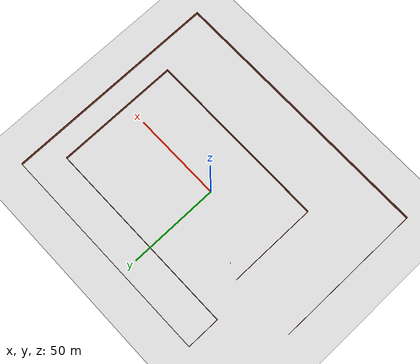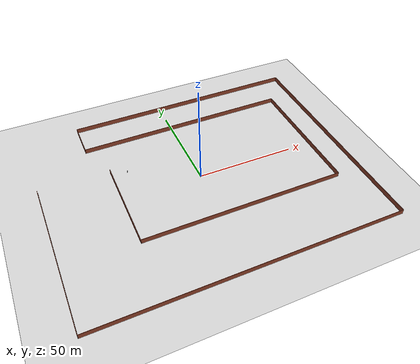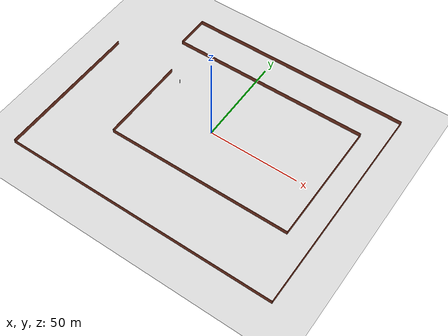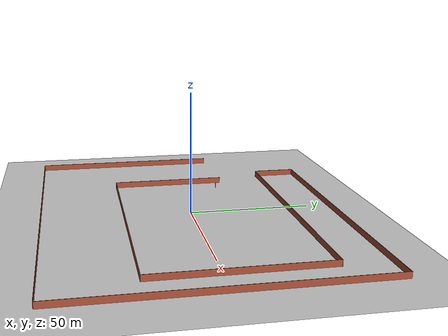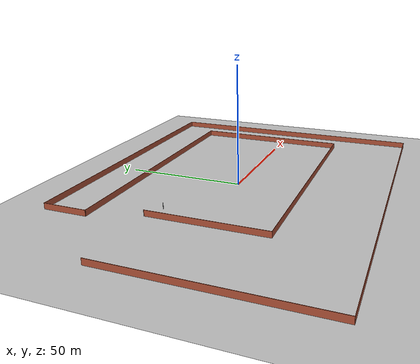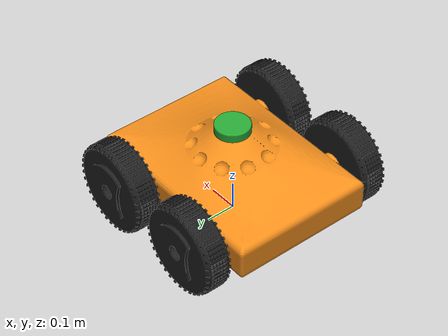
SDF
<sdf version="1.7">
 <world name="default">
  <light name="sun" type="directional">
   <pose>0 0 10 0 -0 0</pose>
   <diffuse>0.8 0.8 0.8 1</diffuse>
   <specular>0.2 0.2 0.2 1</specular>
   <attenuation>
    <range>1000</range>
    <constant>0.9</constant>
    <linear>0.01</linear>
    <quadratic>0.001</quadratic>
   </attenuation>
   <direction>-0.5 0.1 -0.9</direction>
   <spot><inner_angle>0</inner_angle><outer_angle>0</outer_angle><falloff>0</falloff></spot>
  </light>
  <model name="ground_plane">
   <static>1</static>
   <link name="link">
    <collision name="collision">
     <geometry><plane><normal>0 0 1</normal><size>100 100</size></plane></geometry>
     <surface>
      <contact><collide_bitmask>65535</collide_bitmask></contact>
      <friction><ode><mu>100</mu><mu2>50</mu2></ode></friction>
     </surface>
    </collision>
    <visual name="visual">
     <cast_shadows>0</cast_shadows>
     <geometry><plane><normal>0 0 1</normal><size>100 100</size></plane></geometry>
     <material>
      <script><uri>file://media/materials/scripts/gazebo.material</uri><name>Gazebo/Grey</name></script>
     </material>
    </visual>
   </link>
  </model>
  <gravity>0 0 -9.8</gravity>
  <magnetic_field>6e-06 2.3e-05 -4.2e-05</magnetic_field>
  <atmosphere type="adiabatic"/>
  <physics type="ode">
   <max_step_size>0.001</max_step_size>
   <real_time_factor>1</real_time_factor>
   <real_time_update_rate>1000</real_time_update_rate>
  </physics>
  <scene><ambient>0.4 0.4 0.4 1</ambient><background>0.7 0.7 0.7 1</background><shadows>1</shadows></scene>
  <spherical_coordinates>
   <surface_model>EARTH_WGS84</surface_model>
   <latitude_deg>0</latitude_deg>
   <longitude_deg>0</longitude_deg>
   <elevation>0</elevation>
   <heading_deg>0</heading_deg>
  </spherical_coordinates>
  <model name="gbot">
   <link name="base_link">
    <inertial>
     <pose>-1e-06 -0 0.173323 0 -0 0</pose>
     <mass>72.798</mass>
     <inertia>
      <ixx>1.67159</ixx>
      <ixy>-2e-06</ixy>
      <ixz>9.0619e-07</ixz>
      <iyy>2.76467</iyy>
      <iyz>-2.16303e-08</iyz>
      <izz>4.05381</izz>
     </inertia>
    </inertial>
    <collision name="base_link_collision">
     <geometry>
      <mesh>
       <scale>0.001 0.001 0.001</scale>
       <uri>/home/pavan/w_s/src/gbot_description/meshes/base_link.stl</uri>
      </mesh>
     </geometry>
     <surface><friction><ode><mu>0.2</mu><mu2>0.2</mu2></ode></friction></surface>
    </collision>
    <collision name="base_link_fixed_joint_lump__lidar_1_collision_1">
     <geometry>
      <mesh>
       <scale>0.001 0.001 0.001</scale>
       <uri>/home/pavan/w_s/src/gbot_description/meshes/lidar_1.stl</uri>
      </mesh>
     </geometry>
     <surface><friction><ode><mu>0.2</mu><mu2>0.2</mu2></ode></friction></surface>
    </collision>
    <visual name="base_link_visual">
     <geometry>
      <mesh>
       <scale>0.001 0.001 0.001</scale>
       <uri>/home/pavan/w_s/src/gbot_description/meshes/base_link.stl</uri>
      </mesh>
     </geometry>
     <material>
      <script><name>Gazebo/Orange</name><uri>file://media/materials/scripts/gazebo.material</uri></script>
     </material>
    </visual>
    <visual name="base_link_fixed_joint_lump__lidar_1_visual_1">
     <geometry>
      <mesh>
       <scale>0.001 0.001 0.001</scale>
       <uri>/home/pavan/w_s/src/gbot_description/meshes/lidar_1.stl</uri>
      </mesh>
     </geometry>
     <material>
      <script><name>Gazebo/Green</name><uri>file://media/materials/scripts/gazebo.material</uri></script>
     </material>
    </visual>
    <self_collide>1</self_collide>
    <sensor name="head_hokuyo_sensor" type="gpu_ray">
     <visualize>0</visualize>
     <update_rate>40</update_rate>
     <ray>
      <scan>
       <horizontal>
        <samples>720</samples>
        <resolution>1</resolution>
        <min_angle>-3.14</min_angle>
        <max_angle>3.14</max_angle>
       </horizontal>
       <vertical><samples>1</samples><min_angle>0</min_angle><max_angle>0</max_angle></vertical>
      </scan>
      <range><min>0.1</min><max>50</max><resolution>0.01</resolution></range>
      <noise><type>gaussian</type><mean>0</mean><stddev>0.01</stddev></noise>
     </ray>
     <plugin name="gazebo_ros_head_hokuyo_controller" filename="libgazebo_ros_gpu_laser.so">
      <topicName>/rrbot/laser/scan</topicName>
      <frameName>lidar_1</frameName>
      <robotNamespace>/</robotNamespace>
     </plugin>
     <pose>0 0 0.32758 0 -0 0</pose>
    </sensor>
   </link>
   <joint name="frw_j" type="revolute">
    <pose relative_to="base_link">0.175 -0.33 0.15508 0 -0 0</pose>
    <parent>base_link</parent>
    <child>frw_1</child>
    <axis>
     <xyz>0 1 0</xyz>
     <limit><lower>-1e+16</lower><upper>1e+16</upper></limit>
     <dynamics><spring_reference>0</spring_reference><spring_stiffness>0</spring_stiffness></dynamics>
    </axis>
   </joint>
   <link name="frw_1">
    <pose relative_to="frw_j">0 0 0 0 -0 0</pose>
    <inertial>
     <pose>1.1e-05 0.012957 -0 0 -0 0</pose>
     <mass>7.5887</mass>
     <inertia>
      <ixx>0.050298</ixx>
      <ixy>0</ixy>
      <ixz>0</ixz>
      <iyy>0.089426</iyy>
      <iyz>-2e-06</iyz>
      <izz>0.049879</izz>
     </inertia>
    </inertial>
    <collision name="frw_1_collision">
     <pose>-0.175 0.33 -0.15508 0 -0 0</pose>
     <geometry>
      <mesh><scale>0.001 0.001 0.001</scale><uri>/home/pavan/w_s/src/gbot_description/meshes/frw_1.stl</uri></mesh>
     </geometry>
     <surface><friction><ode><mu>0.2</mu><mu2>0.2</mu2></ode></friction></surface>
    </collision>
    <visual name="frw_1_visual">
     <pose>-0.175 0.33 -0.15508 0 -0 0</pose>
     <geometry>
      <mesh><scale>0.001 0.001 0.001</scale><uri>/home/pavan/w_s/src/gbot_description/meshes/frw_1.stl</uri></mesh>
     </geometry>
     <material>
      <script><name>Gazebo/Black</name><uri>file://media/materials/scripts/gazebo.material</uri></script>
     </material>
    </visual>
    <self_collide>1</self_collide>
   </link>
   <joint name="blw_j" type="revolute">
    <pose relative_to="base_link">-0.175 0.33 0.15508 0 -0 0</pose>
    <parent>base_link</parent>
    <child>blw_1</child>
    <axis>
     <xyz>0 1 0</xyz>
     <limit><lower>-1e+16</lower><upper>1e+16</upper></limit>
     <dynamics><spring_reference>0</spring_reference><spring_stiffness>0</spring_stiffness></dynamics>
    </axis>
   </joint>
   <link name="blw_1">
    <pose relative_to="blw_j">0 0 0 0 -0 0</pose>
    <inertial>
     <pose>1.1e-05 -0.012957 0 0 -0 0</pose>
     <mass>7.5887</mass>
     <inertia>
      <ixx>0.050298</ixx>
      <ixy>0</ixy>
      <ixz>-1e-06</ixz>
      <iyy>0.089426</iyy>
      <iyz>-2e-06</iyz>
      <izz>0.049879</izz>
     </inertia>
    </inertial>
    <collision name="blw_1_collision">
     <pose>0.175 -0.33 -0.15508 0 -0 0</pose>
     <geometry>
      <mesh><scale>0.001 0.001 0.001</scale><uri>/home/pavan/w_s/src/gbot_description/meshes/blw_1.stl</uri></mesh>
     </geometry>
     <surface><friction><ode><mu>0.2</mu><mu2>0.2</mu2></ode></friction></surface>
    </collision>
    <visual name="blw_1_visual">
     <pose>0.175 -0.33 -0.15508 0 -0 0</pose>
     <geometry>
      <mesh><scale>0.001 0.001 0.001</scale><uri>/home/pavan/w_s/src/gbot_description/meshes/blw_1.stl</uri></mesh>
     </geometry>
     <material>
      <script><name>Gazebo/Black</name><uri>file://media/materials/scripts/gazebo.material</uri></script>
     </material>
    </visual>
    <self_collide>1</self_collide>
   </link>
   <joint name="brw_j" type="revolute">
    <pose relative_to="base_link">-0.175 -0.33 0.15508 0 -0 0</pose>
    <parent>base_link</parent>
    <child>brw_1</child>
    <axis>
     <xyz>0 1 0</xyz>
     <limit><lower>-1e+16</lower><upper>1e+16</upper></limit>
     <dynamics><spring_reference>0</spring_reference><spring_stiffness>0</spring_stiffness></dynamics>
    </axis>
   </joint>
   <link name="brw_1">
    <pose relative_to="brw_j">0 0 0 0 -0 0</pose>
    <inertial>
     <pose>1.1e-05 0.012957 0 0 -0 0</pose>
     <mass>7.58872</mass>
     <inertia>
      <ixx>0.050298</ixx>
      <ixy>0</ixy>
      <ixz>0</ixz>
      <iyy>0.089426</iyy>
      <iyz>2e-06</iyz>
      <izz>0.049879</izz>
     </inertia>
    </inertial>
    <collision name="brw_1_collision">
     <pose>0.175 0.33 -0.15508 0 -0 0</pose>
     <geometry>
      <mesh><scale>0.001 0.001 0.001</scale><uri>/home/pavan/w_s/src/gbot_description/meshes/brw_1.stl</uri></mesh>
     </geometry>
     <surface><friction><ode><mu>0.2</mu><mu2>0.2</mu2></ode></friction></surface>
    </collision>
    <visual name="brw_1_visual">
     <pose>0.175 0.33 -0.15508 0 -0 0</pose>
     <geometry>
      <mesh><scale>0.001 0.001 0.001</scale><uri>/home/pavan/w_s/src/gbot_description/meshes/brw_1.stl</uri></mesh>
     </geometry>
     <material>
      <script><name>Gazebo/Black</name><uri>file://media/materials/scripts/gazebo.material</uri></script>
     </material>
    </visual>
    <self_collide>1</self_collide>
   </link>
   <joint name="flw_j" type="revolute">
    <pose relative_to="base_link">0.175 0.33 0.15508 0 -0 0</pose>
    <parent>base_link</parent>
    <child>_flw_1</child>
    <axis>
     <xyz>0 1 0</xyz>
     <limit><lower>-1e+16</lower><upper>1e+16</upper></limit>
     <dynamics><spring_reference>0</spring_reference><spring_stiffness>0</spring_stiffness></dynamics>
    </axis>
   </joint>
   <link name="_flw_1">
    <pose relative_to="flw_j">0 0 0 0 -0 0</pose>
    <inertial>
     <pose>-1.1e-05 -0.012957 0 0 -0 0</pose>
     <mass>7.58872</mass>
     <inertia>
      <ixx>0.050298</ixx>
      <ixy>0</ixy>
      <ixz>1e-06</ixz>
      <iyy>0.089426</iyy>
      <iyz>-2e-06</iyz>
      <izz>0.049879</izz>
     </inertia>
    </inertial>
    <collision name="_flw_1_collision">
     <pose>-0.175 -0.33 -0.15508 0 -0 0</pose>
     <geometry>
      <mesh><scale>0.001 0.001 0.001</scale><uri>/home/pavan/w_s/src/gbot_description/meshes/_flw_1.stl</uri></mesh>
     </geometry>
     <surface><friction><ode><mu>0.2</mu><mu2>0.2</mu2></ode></friction></surface>
    </collision>
    <visual name="_flw_1_visual">
     <pose>-0.175 -0.33 -0.15508 0 -0 0</pose>
     <geometry>
      <mesh><scale>0.001 0.001 0.001</scale><uri>/home/pavan/w_s/src/gbot_description/meshes/_flw_1.stl</uri></mesh>
     </geometry>
     <material>
      <script><name>Gazebo/Black</name><uri>file://media/materials/scripts/gazebo.material</uri></script>
     </material>
    </visual>
    <self_collide>1</self_collide>
   </link>
   <plugin name="control" filename="libgazebo_ros_control.so"><robotNamespace>/</robotNamespace></plugin>
   <plugin name="skid_steer_drive_controller" filename="libgazebo_ros_skid_steer_drive.so">
    <updateRate>100.0</updateRate>
    <robotNamespace>/</robotNamespace>
    <leftFrontJoint>flw_j</leftFrontJoint>
    <rightFrontJoint>frw_j</rightFrontJoint>
    <leftRearJoint>blw_j</leftRearJoint>
    <rightRearJoint>brw_j</rightRearJoint>
    <wheelSeparation>0.66</wheelSeparation>
    <wheelDiameter>0.300</wheelDiameter>
    <robotBaseFrame>base_link</robotBaseFrame>
    <torque>20</torque>
    <topicName>cmd_vel</topicName>
    <broadcastTF>1</broadcastTF>
   </plugin>
   <frame name="l_j" attached_to="base_link"><pose>0 0 0.32758 0 -0 0</pose></frame>
   <frame name="lidar_1" attached_to="l_j"/>
  </model>
  <model name="w4">
   <pose>-0.49806 -0.943332 0 0 -0 0</pose>
   <link name="Wall_0">
    <collision name="Wall_0_Collision">
     <geometry><box><size>0.16 0.15 2.5</size></box></geometry>
     <pose>0 0 1.25 0 -0 0</pose>
    </collision>
    <visual name="Wall_0_Visual">
     <pose>0 0 1.25 0 -0 0</pose>
     <geometry><box><size>0.16 0.15 2.5</size></box></geometry>
     <material>
      <script><uri>file://media/materials/scripts/gazebo.material</uri><name>Gazebo/Grey</name></script>
      <ambient>1 1 1 1</ambient>
     </material>
     <meta><layer>0</layer></meta>
    </visual>
    <pose>-31.972 18.4349 0 0 -0 0</pose>
   </link>
   <link name="Wall_10">
    <collision name="Wall_10_Collision">
     <geometry><box><size>110 0.15 2.5</size></box></geometry>
     <pose>0 0 1.25 0 -0 0</pose>
    </collision>
    <visual name="Wall_10_Visual">
     <pose>0 0 1.25 0 -0 0</pose>
     <geometry><box><size>110 0.15 2.5</size></box></geometry>
     <material>
      <script><uri>file://media/materials/scripts/gazebo.material</uri><name>Gazebo/Bricks</name></script>
      <ambient>0.996078 0.47451 0.0196078 1</ambient>
     </material>
     <meta><layer>0</layer></meta>
    </visual>
    <pose>7.625 41.7 0 0 -0 3.14159</pose>
   </link>
   <link name="Wall_11">
    <collision name="Wall_11_Collision">
     <geometry><box><size>18.5 0.15 2.5</size></box></geometry>
     <pose>0 0 1.25 0 -0 0</pose>
    </collision>
    <visual name="Wall_11_Visual">
     <pose>0 0 1.25 0 -0 0</pose>
     <geometry><box><size>18.5 0.15 2.5</size></box></geometry>
     <material>
      <script><uri>file://media/materials/scripts/gazebo.material</uri><name>Gazebo/Bricks</name></script>
      <ambient>0.996078 0.47451 0.0196078 1</ambient>
     </material>
     <meta><layer>0</layer></meta>
    </visual>
    <pose>-47.3 50.875 0 0 -0 1.5708</pose>
   </link>
   <link name="Wall_12">
    <collision name="Wall_12_Collision">
     <geometry><box><size>123 0.15 2.5</size></box></geometry>
     <pose>0 0 1.25 0 -0 0</pose>
    </collision>
    <visual name="Wall_12_Visual">
     <pose>0 0 1.25 0 -0 0</pose>
     <geometry><box><size>123 0.15 2.5</size></box></geometry>
     <material>
      <script><uri>file://media/materials/scripts/gazebo.material</uri><name>Gazebo/Bricks</name></script>
      <ambient>0.996078 0.47451 0.0196078 1</ambient>
     </material>
     <meta><layer>0</layer></meta>
    </visual>
    <pose>14.125 60.05 0 0 -0 0</pose>
   </link>
   <link name="Wall_13">
    <collision name="Wall_13_Collision">
     <geometry><box><size>120.25 0.15 2.5</size></box></geometry>
     <pose>0 0 1.25 0 -0 0</pose>
    </collision>
    <visual name="Wall_13_Visual">
     <pose>0 0 1.25 0 -0 0</pose>
     <geometry><box><size>120.25 0.15 2.5</size></box></geometry>
     <material>
      <script><uri>file://media/materials/scripts/gazebo.material</uri><name>Gazebo/Bricks</name></script>
      <ambient>0.996078 0.47451 0.0196078 1</ambient>
     </material>
     <meta><layer>0</layer></meta>
    </visual>
    <pose>75.55 2e-06 0 0 -0 -1.5708</pose>
   </link>
   <link name="Wall_14">
    <collision name="Wall_14_Collision">
     <geometry><box><size>151.25 0.15 2.5</size></box></geometry>
     <pose>0 0 1.25 0 -0 0</pose>
    </collision>
    <visual name="Wall_14_Visual">
     <pose>0 0 1.25 0 -0 0</pose>
     <geometry><box><size>151.25 0.15 2.5</size></box></geometry>
     <material>
      <script><uri>file://media/materials/scripts/gazebo.material</uri><name>Gazebo/Bricks</name></script>
      <ambient>0.996078 0.47451 0.0196078 1</ambient>
     </material>
     <meta><layer>0</layer></meta>
    </visual>
    <pose>-2e-06 -60.05 0 0 -0 3.14159</pose>
   </link>
   <link name="Wall_15">
    <collision name="Wall_15_Collision">
     <geometry><box><size>0.16 0.15 2.5</size></box></geometry>
     <pose>0 0 1.25 0 -0 0</pose>
    </collision>
    <visual name="Wall_15_Visual">
     <pose>0 0 1.25 0 -0 0</pose>
     <geometry><box><size>0.16 0.15 2.5</size></box></geometry>
     <material>
      <script><uri>file://media/materials/scripts/gazebo.material</uri><name>Gazebo/Grey</name></script>
      <ambient>1 1 1 1</ambient>
     </material>
     <meta><layer>0</layer></meta>
    </visual>
    <pose>-75.545 -60.05 0 0 -0 0</pose>
   </link>
   <link name="Wall_16">
    <collision name="Wall_16_Collision">
     <geometry><box><size>81.75 0.15 2.5</size></box></geometry>
     <pose>0 0 1.25 0 -0 0</pose>
    </collision>
    <visual name="Wall_16_Visual">
     <pose>0 0 1.25 0 -0 0</pose>
     <geometry><box><size>81.75 0.15 2.5</size></box></geometry>
     <material>
      <script><uri>file://media/materials/scripts/gazebo.material</uri><name>Gazebo/Bricks</name></script>
      <ambient>0.996078 0.47451 0.0196078 1</ambient>
     </material>
     <meta><layer>0</layer></meta>
    </visual>
    <pose>-75.54 -19.25 0 0 -0 1.5708</pose>
   </link>
   <link name="Wall_4">
    <collision name="Wall_4_Collision">
     <geometry><box><size>0.16 0.15 2.5</size></box></geometry>
     <pose>0 0 1.25 0 -0 0</pose>
    </collision>
    <visual name="Wall_4_Visual">
     <pose>0 0 1.25 0 -0 0</pose>
     <geometry><box><size>0.16 0.15 2.5</size></box></geometry>
     <material>
      <script><uri>file://media/materials/scripts/gazebo.material</uri><name>Gazebo/Grey</name></script>
      <ambient>1 1 1 1</ambient>
     </material>
     <meta><layer>0</layer></meta>
    </visual>
    <pose>-39.825 21.95 0 0 -0 0</pose>
   </link>
   <link name="Wall_5">
    <collision name="Wall_5_Collision">
     <geometry><box><size>49 0.15 2.5</size></box></geometry>
     <pose>0 0 1.25 0 -0 0</pose>
    </collision>
    <visual name="Wall_5_Visual">
     <pose>0 0 1.25 0 -0 0</pose>
     <geometry><box><size>49 0.15 2.5</size></box></geometry>
     <material>
      <script><uri>file://media/materials/scripts/gazebo.material</uri><name>Gazebo/Bricks</name></script>
      <ambient>0.996078 0.47451 0.0196078 1</ambient>
     </material>
     <meta><layer>0</layer></meta>
    </visual>
    <pose>-39.82 -2.475 0 0 -0 -1.5708</pose>
   </link>
   <link name="Wall_6">
    <collision name="Wall_6_Collision">
     <geometry><box><size>0.16 0.15 2.5</size></box></geometry>
     <pose>0 0 1.25 0 -0 0</pose>
    </collision>
    <visual name="Wall_6_Visual">
     <pose>0 0 1.25 0 -0 0</pose>
     <geometry><box><size>0.16 0.15 2.5</size></box></geometry>
     <material>
      <script><uri>file://media/materials/scripts/gazebo.material</uri><name>Gazebo/Grey</name></script>
      <ambient>1 1 1 1</ambient>
     </material>
     <meta><layer>0</layer></meta>
    </visual>
    <pose>-39.815 -26.9 0 0 -0 0</pose>
   </link>
   <link name="Wall_7">
    <collision name="Wall_7_Collision">
     <geometry><box><size>102.5 0.15 2.5</size></box></geometry>
     <pose>0 0 1.25 0 -0 0</pose>
    </collision>
    <visual name="Wall_7_Visual">
     <pose>0 0 1.25 0 -0 0</pose>
     <geometry><box><size>102.5 0.15 2.5</size></box></geometry>
     <material>
      <script><uri>file://media/materials/scripts/gazebo.material</uri><name>Gazebo/Bricks</name></script>
      <ambient>0.996078 0.47451 0.0196078 1</ambient>
     </material>
     <meta><layer>0</layer></meta>
    </visual>
    <pose>11.365 -26.9 0 0 -0 0</pose>
   </link>
   <link name="Wall_8">
    <collision name="Wall_8_Collision">
     <geometry><box><size>68.75 0.15 2.5</size></box></geometry>
     <pose>0 0 1.25 0 -0 0</pose>
    </collision>
    <visual name="Wall_8_Visual">
     <pose>0 0 1.25 0 -0 0</pose>
     <geometry><box><size>68.75 0.15 2.5</size></box></geometry>
     <material>
      <script><uri>file://media/materials/scripts/gazebo.material</uri><name>Gazebo/Bricks</name></script>
      <ambient>0.996078 0.47451 0.0196078 1</ambient>
     </material>
     <meta><layer>0</layer></meta>
    </visual>
    <pose>62.54 7.4 0 0 -0 1.5708</pose>
   </link>
   <link name="Wall_9">
    <collision name="Wall_9_Collision">
     <geometry><box><size>0.16 0.15 2.5</size></box></geometry>
     <pose>0 0 1.25 0 -0 0</pose>
    </collision>
    <visual name="Wall_9_Visual">
     <pose>0 0 1.25 0 -0 0</pose>
     <geometry><box><size>0.16 0.15 2.5</size></box></geometry>
     <material>
      <script><uri>file://media/materials/scripts/gazebo.material</uri><name>Gazebo/Grey</name></script>
      <ambient>1 1 1 1</ambient>
     </material>
     <meta><layer>0</layer></meta>
    </visual>
    <pose>62.545 41.7 0 0 -0 0</pose>
   </link>
   <static>1</static>
  </model>
 </world>
</sdf>
